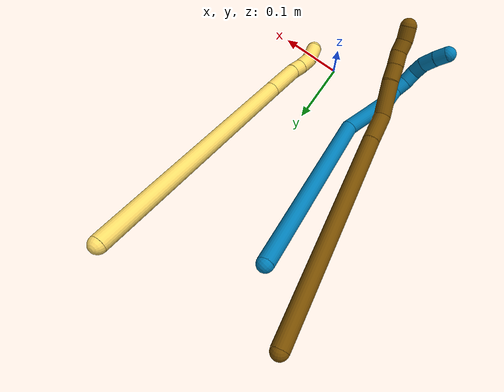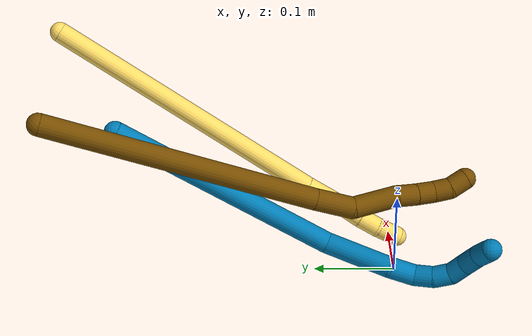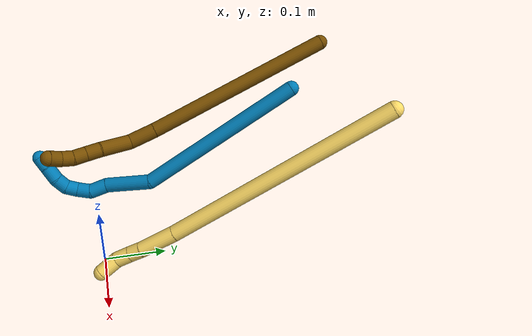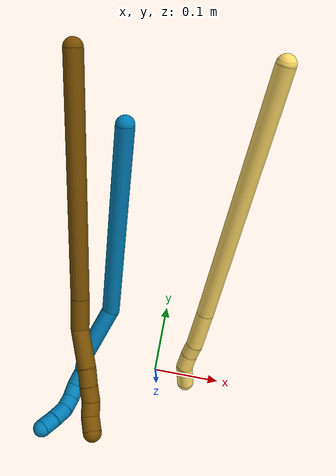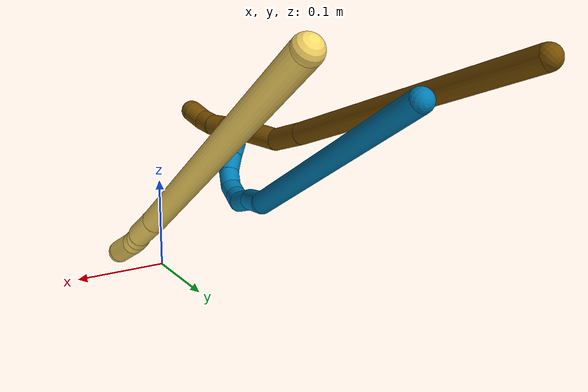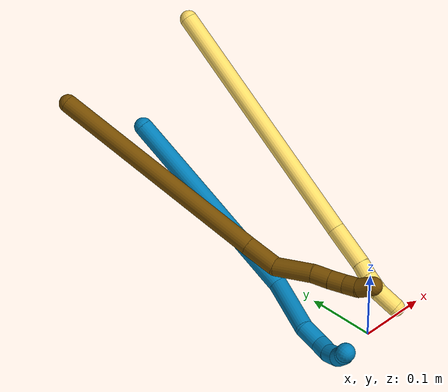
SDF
<sdf version="1.7">
 <world name="default">
  <model name="5">
   <static>0</static>
   <link name="5">
    <collision name="collision-cylinder-e_1_1_4">
     <pose>-0.007206 -0.030723 -0.17885 2.97147 -0.039691 -0.457418</pose>
     <geometry><cylinder><radius>0.0125</radius><length>0.363224</length></cylinder></geometry>
     <surface>
      <friction><ode><mu>1.16</mu><mu2>1.16</mu2><slip1>0</slip1><slip2>0</slip2></ode></friction>
      <contact><ode><kp>1e+06</kp><kd>1</kd><max_vel>0</max_vel><min_depth>0.001</min_depth></ode></contact>
     </surface>
    </collision>
    <visual name="visual-cylinder-e_1_1_4">
     <pose>-0.007206 -0.030723 -0.17885 2.97147 -0.039691 -0.457418</pose>
     <geometry><cylinder><radius>0.0125</radius><length>0.363224</length></cylinder></geometry>
     <material><ambient>1 0.858824 0.4 1</ambient></material>
    </visual>
    <collision name="collision-cylinder-e_2_4_5">
     <pose>-0.016144 -0.067878 -0.386667 2.92307 -0.058262 -0.519263</pose>
     <geometry><cylinder><radius>0.0125</radius><length>0.059447</length></cylinder></geometry>
     <surface>
      <friction><ode><mu>1.16</mu><mu2>1.16</mu2><slip1>0</slip1><slip2>0</slip2></ode></friction>
      <contact><ode><kp>1e+06</kp><kd>1</kd><max_vel>0</max_vel><min_depth>0.001</min_depth></ode></contact>
     </surface>
    </collision>
    <visual name="visual-cylinder-e_2_4_5">
     <pose>-0.016144 -0.067878 -0.386667 2.92307 -0.058262 -0.519263</pose>
     <geometry><cylinder><radius>0.0125</radius><length>0.059447</length></cylinder></geometry>
     <material><ambient>1 0.858824 0.4 1</ambient></material>
    </visual>
    <collision name="collision-cylinder-e_3_5_6">
     <pose>-0.019776 -0.076397 -0.425507 2.9334 -0.186236 -1.45887</pose>
     <geometry><cylinder><radius>0.0125</radius><length>0.020537</length></cylinder></geometry>
     <surface>
      <friction><ode><mu>1.16</mu><mu2>1.16</mu2><slip1>0</slip1><slip2>0</slip2></ode></friction>
      <contact><ode><kp>1e+06</kp><kd>1</kd><max_vel>0</max_vel><min_depth>0.001</min_depth></ode></contact>
     </surface>
    </collision>
    <visual name="visual-cylinder-e_3_5_6">
     <pose>-0.019776 -0.076397 -0.425507 2.9334 -0.186236 -1.45887</pose>
     <geometry><cylinder><radius>0.0125</radius><length>0.020537</length></cylinder></geometry>
     <material><ambient>1 0.858824 0.4 1</ambient></material>
    </visual>
    <collision name="collision-cylinder-e_4_6_7">
     <pose>-0.022963 -0.08163 -0.447408 2.88565 -0.103067 -0.762495</pose>
     <geometry><cylinder><radius>0.0125</radius><length>0.024998</length></cylinder></geometry>
     <surface>
      <friction><ode><mu>1.16</mu><mu2>1.16</mu2><slip1>0</slip1><slip2>0</slip2></ode></friction>
      <contact><ode><kp>1e+06</kp><kd>1</kd><max_vel>0</max_vel><min_depth>0.001</min_depth></ode></contact>
     </surface>
    </collision>
    <visual name="visual-cylinder-e_4_6_7">
     <pose>-0.022963 -0.08163 -0.447408 2.88565 -0.103067 -0.762495</pose>
     <geometry><cylinder><radius>0.0125</radius><length>0.024998</length></cylinder></geometry>
     <material><ambient>1 0.858824 0.4 1</ambient></material>
    </visual>
    <collision name="collision-cylinder-e_5_7_2">
     <pose>-0.020604 -0.087258 -0.474709 2.98056 0.231338 1.92757</pose>
     <geometry><cylinder><radius>0.0125</radius><length>0.031794</length></cylinder></geometry>
     <surface>
      <friction><ode><mu>1.16</mu><mu2>1.16</mu2><slip1>0</slip1><slip2>0</slip2></ode></friction>
      <contact><ode><kp>1e+06</kp><kd>1</kd><max_vel>0</max_vel><min_depth>0.001</min_depth></ode></contact>
     </surface>
    </collision>
    <visual name="visual-cylinder-e_5_7_2">
     <pose>-0.020604 -0.087258 -0.474709 2.98056 0.231338 1.92757</pose>
     <geometry><cylinder><radius>0.0125</radius><length>0.031794</length></cylinder></geometry>
     <material><ambient>1 0.858824 0.4 1</ambient></material>
    </visual>
    <collision name="collision-sphere-2">
     <pose>-0.016959 -0.089739 -0.489982 0 -0 0</pose>
     <geometry><sphere><radius>0.0125</radius></sphere></geometry>
     <surface>
      <friction><ode><mu>1.16</mu><mu2>1.16</mu2><slip1>0</slip1><slip2>0</slip2></ode></friction>
      <contact><ode><kp>1e+06</kp><kd>1</kd><max_vel>0</max_vel><min_depth>0.001</min_depth></ode></contact>
     </surface>
    </collision>
    <visual name="visual-sphere-2">
     <pose>-0.016959 -0.089739 -0.489982 0 -0 0</pose>
     <geometry><sphere><radius>0.0125</radius></sphere></geometry>
     <material><ambient>1 0.858824 0.4 1</ambient></material>
    </visual>
    <collision name="collision-sphere-7">
     <pose>-0.024249 -0.084777 -0.459435 0 -0 0</pose>
     <geometry><sphere><radius>0.0125</radius></sphere></geometry>
     <surface>
      <friction><ode><mu>1.16</mu><mu2>1.16</mu2><slip1>0</slip1><slip2>0</slip2></ode></friction>
      <contact><ode><kp>1e+06</kp><kd>1</kd><max_vel>0</max_vel><min_depth>0.001</min_depth></ode></contact>
     </surface>
    </collision>
    <visual name="visual-sphere-7">
     <pose>-0.024249 -0.084777 -0.459435 0 -0 0</pose>
     <geometry><sphere><radius>0.0125</radius></sphere></geometry>
     <material><ambient>1 0.858824 0.4 1</ambient></material>
    </visual>
    <collision name="collision-sphere-6">
     <pose>-0.021677 -0.078482 -0.43538 0 -0 0</pose>
     <geometry><sphere><radius>0.0125</radius></sphere></geometry>
     <surface>
      <friction><ode><mu>1.16</mu><mu2>1.16</mu2><slip1>0</slip1><slip2>0</slip2></ode></friction>
      <contact><ode><kp>1e+06</kp><kd>1</kd><max_vel>0</max_vel><min_depth>0.001</min_depth></ode></contact>
     </surface>
    </collision>
    <visual name="visual-sphere-6">
     <pose>-0.021677 -0.078482 -0.43538 0 -0 0</pose>
     <geometry><sphere><radius>0.0125</radius></sphere></geometry>
     <material><ambient>1 0.858824 0.4 1</ambient></material>
    </visual>
    <collision name="collision-sphere-5">
     <pose>-0.017875 -0.074311 -0.415634 0 -0 0</pose>
     <geometry><sphere><radius>0.0125</radius></sphere></geometry>
     <surface>
      <friction><ode><mu>1.16</mu><mu2>1.16</mu2><slip1>0</slip1><slip2>0</slip2></ode></friction>
      <contact><ode><kp>1e+06</kp><kd>1</kd><max_vel>0</max_vel><min_depth>0.001</min_depth></ode></contact>
     </surface>
    </collision>
    <visual name="visual-sphere-5">
     <pose>-0.017875 -0.074311 -0.415634 0 -0 0</pose>
     <geometry><sphere><radius>0.0125</radius></sphere></geometry>
     <material><ambient>1 0.858824 0.4 1</ambient></material>
    </visual>
    <collision name="collision-sphere-1">
     <geometry><sphere><radius>0.0125</radius></sphere></geometry>
     <surface>
      <friction><ode><mu>1.16</mu><mu2>1.16</mu2><slip1>0</slip1><slip2>0</slip2></ode></friction>
      <contact><ode><kp>1e+06</kp><kd>1</kd><max_vel>0</max_vel><min_depth>0.001</min_depth></ode></contact>
     </surface>
    </collision>
    <visual name="visual-sphere-1">
     <geometry><sphere><radius>0.0125</radius></sphere></geometry>
     <material><ambient>1 0.858824 0.4 1</ambient></material>
    </visual>
    <collision name="collision-sphere-4">
     <pose>-0.014413 -0.061445 -0.357699 0 -0 0</pose>
     <geometry><sphere><radius>0.0125</radius></sphere></geometry>
     <surface>
      <friction><ode><mu>1.16</mu><mu2>1.16</mu2><slip1>0</slip1><slip2>0</slip2></ode></friction>
      <contact><ode><kp>1e+06</kp><kd>1</kd><max_vel>0</max_vel><min_depth>0.001</min_depth></ode></contact>
     </surface>
    </collision>
    <visual name="visual-sphere-4">
     <pose>-0.014413 -0.061445 -0.357699 0 -0 0</pose>
     <geometry><sphere><radius>0.0125</radius></sphere></geometry>
     <material><ambient>1 0.858824 0.4 1</ambient></material>
    </visual>
    <inertial>
     <pose>-0.010425 -0.043156 -0.245929 0 -0 0</pose>
     <mass>0.5</mass>
     <inertia>
      <ixx>0.001831</ixx>
      <ixy>0</ixy>
      <ixz>0</ixz>
      <iyy>-0.005333</iyy>
      <iyz>0</iyz>
      <izz>0.000805</izz>
     </inertia>
    </inertial>
   </link>
   <pose>0.06756 0.414046 0.289079 -0.825222 -0.050629 -0.037809</pose>
  </model>
  <model name="9">
   <static>0</static>
   <link name="9">
    <collision name="collision-cylinder-e_1_1_4">
     <pose>-0.057458 -0.058746 -0.113433 2.66374 -0.422682 -1.44421</pose>
     <geometry><cylinder><radius>0.0125</radius><length>0.28014</length></cylinder></geometry>
     <surface>
      <friction><ode><mu>1.16</mu><mu2>1.16</mu2><slip1>0</slip1><slip2>0</slip2></ode></friction>
      <contact><ode><kp>1e+06</kp><kd>1</kd><max_vel>0</max_vel><min_depth>0.001</min_depth></ode></contact>
     </surface>
    </collision>
    <visual name="visual-cylinder-e_1_1_4">
     <pose>-0.057458 -0.058746 -0.113433 2.66374 -0.422682 -1.44421</pose>
     <geometry><cylinder><radius>0.0125</radius><length>0.28014</length></cylinder></geometry>
     <material><ambient>0 0.490196 0.709804 1</ambient></material>
    </visual>
    <collision name="collision-cylinder-e_2_4_5">
     <pose>-0.112959 -0.130092 -0.264253 2.81653 0.049549 0.299961</pose>
     <geometry><cylinder><radius>0.0125</radius><length>0.079002</length></cylinder></geometry>
     <surface>
      <friction><ode><mu>1.16</mu><mu2>1.16</mu2><slip1>0</slip1><slip2>0</slip2></ode></friction>
      <contact><ode><kp>1e+06</kp><kd>1</kd><max_vel>0</max_vel><min_depth>0.001</min_depth></ode></contact>
     </surface>
    </collision>
    <visual name="visual-cylinder-e_2_4_5">
     <pose>-0.112959 -0.130092 -0.264253 2.81653 0.049549 0.299961</pose>
     <geometry><cylinder><radius>0.0125</radius><length>0.079002</length></cylinder></geometry>
     <material><ambient>0 0.490196 0.709804 1</ambient></material>
    </visual>
    <collision name="collision-cylinder-e_3_5_6">
     <pose>-0.115224 -0.146728 -0.315587 2.85987 -0.282939 -1.57516</pose>
     <geometry><cylinder><radius>0.0125</radius><length>0.030242</length></cylinder></geometry>
     <surface>
      <friction><ode><mu>1.16</mu><mu2>1.16</mu2><slip1>0</slip1><slip2>0</slip2></ode></friction>
      <contact><ode><kp>1e+06</kp><kd>1</kd><max_vel>0</max_vel><min_depth>0.001</min_depth></ode></contact>
     </surface>
    </collision>
    <visual name="visual-cylinder-e_3_5_6">
     <pose>-0.115224 -0.146728 -0.315587 2.85987 -0.282939 -1.57516</pose>
     <geometry><cylinder><radius>0.0125</radius><length>0.030242</length></cylinder></geometry>
     <material><ambient>0 0.490196 0.709804 1</ambient></material>
    </visual>
    <collision name="collision-cylinder-e_4_6_7">
     <pose>-0.117712 -0.151234 -0.340899 3.10035 0.151287 2.61024</pose>
     <geometry><cylinder><radius>0.0125</radius><length>0.02301</length></cylinder></geometry>
     <surface>
      <friction><ode><mu>1.16</mu><mu2>1.16</mu2><slip1>0</slip1><slip2>0</slip2></ode></friction>
      <contact><ode><kp>1e+06</kp><kd>1</kd><max_vel>0</max_vel><min_depth>0.001</min_depth></ode></contact>
     </surface>
    </collision>
    <visual name="visual-cylinder-e_4_6_7">
     <pose>-0.117712 -0.151234 -0.340899 3.10035 0.151287 2.61024</pose>
     <geometry><cylinder><radius>0.0125</radius><length>0.02301</length></cylinder></geometry>
     <material><ambient>0 0.490196 0.709804 1</ambient></material>
    </visual>
    <collision name="collision-cylinder-e_5_7_8">
     <pose>-0.114637 -0.149176 -0.362249 -2.89379 0.129483 -0.959932</pose>
     <geometry><cylinder><radius>0.0125</radius><length>0.020777</length></cylinder></geometry>
     <surface>
      <friction><ode><mu>1.16</mu><mu2>1.16</mu2><slip1>0</slip1><slip2>0</slip2></ode></friction>
      <contact><ode><kp>1e+06</kp><kd>1</kd><max_vel>0</max_vel><min_depth>0.001</min_depth></ode></contact>
     </surface>
    </collision>
    <visual name="visual-cylinder-e_5_7_8">
     <pose>-0.114637 -0.149176 -0.362249 -2.89379 0.129483 -0.959932</pose>
     <geometry><cylinder><radius>0.0125</radius><length>0.020777</length></cylinder></geometry>
     <material><ambient>0 0.490196 0.709804 1</ambient></material>
    </visual>
    <collision name="collision-cylinder-e_6_8_9">
     <pose>-0.108861 -0.140645 -0.379943 -2.47979 0.426048 -1.12387</pose>
     <geometry><cylinder><radius>0.0125</radius><length>0.021457</length></cylinder></geometry>
     <surface>
      <friction><ode><mu>1.16</mu><mu2>1.16</mu2><slip1>0</slip1><slip2>0</slip2></ode></friction>
      <contact><ode><kp>1e+06</kp><kd>1</kd><max_vel>0</max_vel><min_depth>0.001</min_depth></ode></contact>
     </surface>
    </collision>
    <visual name="visual-cylinder-e_6_8_9">
     <pose>-0.108861 -0.140645 -0.379943 -2.47979 0.426048 -1.12387</pose>
     <geometry><cylinder><radius>0.0125</radius><length>0.021457</length></cylinder></geometry>
     <material><ambient>0 0.490196 0.709804 1</ambient></material>
    </visual>
    <collision name="collision-cylinder-e_7_9_10">
     <pose>-0.096412 -0.128993 -0.394806 -2.47331 0.721221 -1.65344</pose>
     <geometry><cylinder><radius>0.0125</radius><length>0.024279</length></cylinder></geometry>
     <surface>
      <friction><ode><mu>1.16</mu><mu2>1.16</mu2><slip1>0</slip1><slip2>0</slip2></ode></friction>
      <contact><ode><kp>1e+06</kp><kd>1</kd><max_vel>0</max_vel><min_depth>0.001</min_depth></ode></contact>
     </surface>
    </collision>
    <visual name="visual-cylinder-e_7_9_10">
     <pose>-0.096412 -0.128993 -0.394806 -2.47331 0.721221 -1.65344</pose>
     <geometry><cylinder><radius>0.0125</radius><length>0.024279</length></cylinder></geometry>
     <material><ambient>0 0.490196 0.709804 1</ambient></material>
    </visual>
    <collision name="collision-cylinder-e_8_10_2">
     <pose>-0.080999 -0.119491 -0.408416 -2.60351 0.777353 -1.95642</pose>
     <geometry><cylinder><radius>0.0125</radius><length>0.021093</length></cylinder></geometry>
     <surface>
      <friction><ode><mu>1.16</mu><mu2>1.16</mu2><slip1>0</slip1><slip2>0</slip2></ode></friction>
      <contact><ode><kp>1e+06</kp><kd>1</kd><max_vel>0</max_vel><min_depth>0.001</min_depth></ode></contact>
     </surface>
    </collision>
    <visual name="visual-cylinder-e_8_10_2">
     <pose>-0.080999 -0.119491 -0.408416 -2.60351 0.777353 -1.95642</pose>
     <geometry><cylinder><radius>0.0125</radius><length>0.021093</length></cylinder></geometry>
     <material><ambient>0 0.490196 0.709804 1</ambient></material>
    </visual>
    <collision name="collision-sphere-2">
     <pose>-0.073602 -0.115639 -0.414871 0 -0 0</pose>
     <geometry><sphere><radius>0.0125</radius></sphere></geometry>
     <surface>
      <friction><ode><mu>1.16</mu><mu2>1.16</mu2><slip1>0</slip1><slip2>0</slip2></ode></friction>
      <contact><ode><kp>1e+06</kp><kd>1</kd><max_vel>0</max_vel><min_depth>0.001</min_depth></ode></contact>
     </surface>
    </collision>
    <visual name="visual-sphere-2">
     <pose>-0.073602 -0.115639 -0.414871 0 -0 0</pose>
     <geometry><sphere><radius>0.0125</radius></sphere></geometry>
     <material><ambient>0 0.490196 0.709804 1</ambient></material>
    </visual>
    <collision name="collision-sphere-10">
     <pose>-0.088396 -0.123344 -0.401962 0 -0 0</pose>
     <geometry><sphere><radius>0.0125</radius></sphere></geometry>
     <surface>
      <friction><ode><mu>1.16</mu><mu2>1.16</mu2><slip1>0</slip1><slip2>0</slip2></ode></friction>
      <contact><ode><kp>1e+06</kp><kd>1</kd><max_vel>0</max_vel><min_depth>0.001</min_depth></ode></contact>
     </surface>
    </collision>
    <visual name="visual-sphere-10">
     <pose>-0.088396 -0.123344 -0.401962 0 -0 0</pose>
     <geometry><sphere><radius>0.0125</radius></sphere></geometry>
     <material><ambient>0 0.490196 0.709804 1</ambient></material>
    </visual>
    <collision name="collision-sphere-9">
     <pose>-0.104428 -0.134642 -0.38765 0 -0 0</pose>
     <geometry><sphere><radius>0.0125</radius></sphere></geometry>
     <surface>
      <friction><ode><mu>1.16</mu><mu2>1.16</mu2><slip1>0</slip1><slip2>0</slip2></ode></friction>
      <contact><ode><kp>1e+06</kp><kd>1</kd><max_vel>0</max_vel><min_depth>0.001</min_depth></ode></contact>
     </surface>
    </collision>
    <visual name="visual-sphere-9">
     <pose>-0.104428 -0.134642 -0.38765 0 -0 0</pose>
     <geometry><sphere><radius>0.0125</radius></sphere></geometry>
     <material><ambient>0 0.490196 0.709804 1</ambient></material>
    </visual>
    <collision name="collision-sphere-4">
     <pose>-0.114916 -0.117492 -0.226866 0 -0 0</pose>
     <geometry><sphere><radius>0.0125</radius></sphere></geometry>
     <surface>
      <friction><ode><mu>1.16</mu><mu2>1.16</mu2><slip1>0</slip1><slip2>0</slip2></ode></friction>
      <contact><ode><kp>1e+06</kp><kd>1</kd><max_vel>0</max_vel><min_depth>0.001</min_depth></ode></contact>
     </surface>
    </collision>
    <visual name="visual-sphere-4">
     <pose>-0.114916 -0.117492 -0.226866 0 -0 0</pose>
     <geometry><sphere><radius>0.0125</radius></sphere></geometry>
     <material><ambient>0 0.490196 0.709804 1</ambient></material>
    </visual>
    <collision name="collision-sphere-1">
     <geometry><sphere><radius>0.0125</radius></sphere></geometry>
     <surface>
      <friction><ode><mu>1.16</mu><mu2>1.16</mu2><slip1>0</slip1><slip2>0</slip2></ode></friction>
      <contact><ode><kp>1e+06</kp><kd>1</kd><max_vel>0</max_vel><min_depth>0.001</min_depth></ode></contact>
     </surface>
    </collision>
    <visual name="visual-sphere-1">
     <geometry><sphere><radius>0.0125</radius></sphere></geometry>
     <material><ambient>0 0.490196 0.709804 1</ambient></material>
    </visual>
    <collision name="collision-sphere-8">
     <pose>-0.113295 -0.146649 -0.372237 0 -0 0</pose>
     <geometry><sphere><radius>0.0125</radius></sphere></geometry>
     <surface>
      <friction><ode><mu>1.16</mu><mu2>1.16</mu2><slip1>0</slip1><slip2>0</slip2></ode></friction>
      <contact><ode><kp>1e+06</kp><kd>1</kd><max_vel>0</max_vel><min_depth>0.001</min_depth></ode></contact>
     </surface>
    </collision>
    <visual name="visual-sphere-8">
     <pose>-0.113295 -0.146649 -0.372237 0 -0 0</pose>
     <geometry><sphere><radius>0.0125</radius></sphere></geometry>
     <material><ambient>0 0.490196 0.709804 1</ambient></material>
    </visual>
    <collision name="collision-sphere-5">
     <pose>-0.111003 -0.142691 -0.30164 0 -0 0</pose>
     <geometry><sphere><radius>0.0125</radius></sphere></geometry>
     <surface>
      <friction><ode><mu>1.16</mu><mu2>1.16</mu2><slip1>0</slip1><slip2>0</slip2></ode></friction>
      <contact><ode><kp>1e+06</kp><kd>1</kd><max_vel>0</max_vel><min_depth>0.001</min_depth></ode></contact>
     </surface>
    </collision>
    <visual name="visual-sphere-5">
     <pose>-0.111003 -0.142691 -0.30164 0 -0 0</pose>
     <geometry><sphere><radius>0.0125</radius></sphere></geometry>
     <material><ambient>0 0.490196 0.709804 1</ambient></material>
    </visual>
    <collision name="collision-sphere-6">
     <pose>-0.119446 -0.150765 -0.329535 0 -0 0</pose>
     <geometry><sphere><radius>0.0125</radius></sphere></geometry>
     <surface>
      <friction><ode><mu>1.16</mu><mu2>1.16</mu2><slip1>0</slip1><slip2>0</slip2></ode></friction>
      <contact><ode><kp>1e+06</kp><kd>1</kd><max_vel>0</max_vel><min_depth>0.001</min_depth></ode></contact>
     </surface>
    </collision>
    <visual name="visual-sphere-6">
     <pose>-0.119446 -0.150765 -0.329535 0 -0 0</pose>
     <geometry><sphere><radius>0.0125</radius></sphere></geometry>
     <material><ambient>0 0.490196 0.709804 1</ambient></material>
    </visual>
    <collision name="collision-sphere-7">
     <pose>-0.115978 -0.151703 -0.352262 0 -0 0</pose>
     <geometry><sphere><radius>0.0125</radius></sphere></geometry>
     <surface>
      <friction><ode><mu>1.16</mu><mu2>1.16</mu2><slip1>0</slip1><slip2>0</slip2></ode></friction>
      <contact><ode><kp>1e+06</kp><kd>1</kd><max_vel>0</max_vel><min_depth>0.001</min_depth></ode></contact>
     </surface>
    </collision>
    <visual name="visual-sphere-7">
     <pose>-0.115978 -0.151703 -0.352262 0 -0 0</pose>
     <geometry><sphere><radius>0.0125</radius></sphere></geometry>
     <material><ambient>0 0.490196 0.709804 1</ambient></material>
    </visual>
    <inertial>
     <pose>-0.079961 -0.092843 -0.207842 0 -0 0</pose>
     <mass>0.5</mass>
     <inertia>
      <ixx>-0.001414</ixx>
      <ixy>0</ixy>
      <ixz>0</ixz>
      <iyy>-0.00157</iyy>
      <iyz>0</iyz>
      <izz>0.001504</izz>
     </inertia>
    </inertial>
   </link>
   <pose>-0.101407 0.326953 0.230066 1.61611 -0.449986 2.97539</pose>
  </model>
  <model name="12">
   <static>0</static>
   <link name="12">
    <collision name="collision-cylinder-e_1_1_4">
     <pose>-0.092842 -0.100137 -0.077918 2.23205 -0.631706 -1.17834</pose>
     <geometry><cylinder><radius>0.0125</radius><length>0.314441</length></cylinder></geometry>
     <surface>
      <friction><ode><mu>1.16</mu><mu2>1.16</mu2><slip1>0</slip1><slip2>0</slip2></ode></friction>
      <contact><ode><kp>1e+06</kp><kd>1</kd><max_vel>0</max_vel><min_depth>0.001</min_depth></ode></contact>
     </surface>
    </collision>
    <visual name="visual-cylinder-e_1_1_4">
     <pose>-0.092842 -0.100137 -0.077918 2.23205 -0.631706 -1.17834</pose>
     <geometry><cylinder><radius>0.0125</radius><length>0.314441</length></cylinder></geometry>
     <material><ambient>0.466667 0.301961 0 1</ambient></material>
    </visual>
    <collision name="collision-cylinder-e_2_4_5">
     <pose>-0.198266 -0.214879 -0.167863 2.25969 -0.586841 -1.13892</pose>
     <geometry><cylinder><radius>0.0125</radius><length>0.045444</length></cylinder></geometry>
     <surface>
      <friction><ode><mu>1.16</mu><mu2>1.16</mu2><slip1>0</slip1><slip2>0</slip2></ode></friction>
      <contact><ode><kp>1e+06</kp><kd>1</kd><max_vel>0</max_vel><min_depth>0.001</min_depth></ode></contact>
     </surface>
    </collision>
    <visual name="visual-cylinder-e_2_4_5">
     <pose>-0.198266 -0.214879 -0.167863 2.25969 -0.586841 -1.13892</pose>
     <geometry><cylinder><radius>0.0125</radius><length>0.045444</length></cylinder></geometry>
     <material><ambient>0.466667 0.301961 0 1</ambient></material>
    </visual>
    <collision name="collision-cylinder-e_3_5_6">
     <pose>-0.222262 -0.238306 -0.202302 2.76663 -0.442543 -1.74037</pose>
     <geometry><cylinder><radius>0.0125</radius><length>0.053305</length></cylinder></geometry>
     <surface>
      <friction><ode><mu>1.16</mu><mu2>1.16</mu2><slip1>0</slip1><slip2>0</slip2></ode></friction>
      <contact><ode><kp>1e+06</kp><kd>1</kd><max_vel>0</max_vel><min_depth>0.001</min_depth></ode></contact>
     </surface>
    </collision>
    <visual name="visual-cylinder-e_3_5_6">
     <pose>-0.222262 -0.238306 -0.202302 2.76663 -0.442543 -1.74037</pose>
     <geometry><cylinder><radius>0.0125</radius><length>0.053305</length></cylinder></geometry>
     <material><ambient>0.466667 0.301961 0 1</ambient></material>
    </visual>
    <collision name="collision-cylinder-e_4_6_7">
     <pose>-0.239376 -0.252715 -0.233969 2.5984 -0.485179 -1.45299</pose>
     <geometry><cylinder><radius>0.0125</radius><length>0.024445</length></cylinder></geometry>
     <surface>
      <friction><ode><mu>1.16</mu><mu2>1.16</mu2><slip1>0</slip1><slip2>0</slip2></ode></friction>
      <contact><ode><kp>1e+06</kp><kd>1</kd><max_vel>0</max_vel><min_depth>0.001</min_depth></ode></contact>
     </surface>
    </collision>
    <visual name="visual-cylinder-e_4_6_7">
     <pose>-0.239376 -0.252715 -0.233969 2.5984 -0.485179 -1.45299</pose>
     <geometry><cylinder><radius>0.0125</radius><length>0.024445</length></cylinder></geometry>
     <material><ambient>0.466667 0.301961 0 1</ambient></material>
    </visual>
    <collision name="collision-cylinder-e_5_7_8">
     <pose>-0.250148 -0.262608 -0.251494 2.66167 -0.498275 -1.60985</pose>
     <geometry><cylinder><radius>0.0125</radius><length>0.021227</length></cylinder></geometry>
     <surface>
      <friction><ode><mu>1.16</mu><mu2>1.16</mu2><slip1>0</slip1><slip2>0</slip2></ode></friction>
      <contact><ode><kp>1e+06</kp><kd>1</kd><max_vel>0</max_vel><min_depth>0.001</min_depth></ode></contact>
     </surface>
    </collision>
    <visual name="visual-cylinder-e_5_7_8">
     <pose>-0.250148 -0.262608 -0.251494 2.66167 -0.498275 -1.60985</pose>
     <geometry><cylinder><radius>0.0125</radius><length>0.021227</length></cylinder></geometry>
     <material><ambient>0.466667 0.301961 0 1</ambient></material>
    </visual>
    <collision name="collision-cylinder-e_6_8_9">
     <pose>-0.257782 -0.271648 -0.26832 2.63607 -0.256163 -0.925094</pose>
     <geometry><cylinder><radius>0.0125</radius><length>0.020218</length></cylinder></geometry>
     <surface>
      <friction><ode><mu>1.16</mu><mu2>1.16</mu2><slip1>0</slip1><slip2>0</slip2></ode></friction>
      <contact><ode><kp>1e+06</kp><kd>1</kd><max_vel>0</max_vel><min_depth>0.001</min_depth></ode></contact>
     </surface>
    </collision>
    <visual name="visual-cylinder-e_6_8_9">
     <pose>-0.257782 -0.271648 -0.26832 2.63607 -0.256163 -0.925094</pose>
     <geometry><cylinder><radius>0.0125</radius><length>0.020218</length></cylinder></geometry>
     <material><ambient>0.466667 0.301961 0 1</ambient></material>
    </visual>
    <collision name="collision-cylinder-e_7_9_2">
     <pose>-0.261992 -0.278064 -0.287068 2.9782 -0.158351 -1.53934</pose>
     <geometry><cylinder><radius>0.0125</radius><length>0.02092</length></cylinder></geometry>
     <surface>
      <friction><ode><mu>1.16</mu><mu2>1.16</mu2><slip1>0</slip1><slip2>0</slip2></ode></friction>
      <contact><ode><kp>1e+06</kp><kd>1</kd><max_vel>0</max_vel><min_depth>0.001</min_depth></ode></contact>
     </surface>
    </collision>
    <visual name="visual-cylinder-e_7_9_2">
     <pose>-0.261992 -0.278064 -0.287068 2.9782 -0.158351 -1.53934</pose>
     <geometry><cylinder><radius>0.0125</radius><length>0.02092</length></cylinder></geometry>
     <material><ambient>0.466667 0.301961 0 1</ambient></material>
    </visual>
    <collision name="collision-sphere-2">
     <pose>-0.263642 -0.279744 -0.29726 0 -0 0</pose>
     <geometry><sphere><radius>0.0125</radius></sphere></geometry>
     <surface>
      <friction><ode><mu>1.16</mu><mu2>1.16</mu2><slip1>0</slip1><slip2>0</slip2></ode></friction>
      <contact><ode><kp>1e+06</kp><kd>1</kd><max_vel>0</max_vel><min_depth>0.001</min_depth></ode></contact>
     </surface>
    </collision>
    <visual name="visual-sphere-2">
     <pose>-0.263642 -0.279744 -0.29726 0 -0 0</pose>
     <geometry><sphere><radius>0.0125</radius></sphere></geometry>
     <material><ambient>0.466667 0.301961 0 1</ambient></material>
    </visual>
    <collision name="collision-sphere-9">
     <pose>-0.260343 -0.276384 -0.276876 0 -0 0</pose>
     <geometry><sphere><radius>0.0125</radius></sphere></geometry>
     <surface>
      <friction><ode><mu>1.16</mu><mu2>1.16</mu2><slip1>0</slip1><slip2>0</slip2></ode></friction>
      <contact><ode><kp>1e+06</kp><kd>1</kd><max_vel>0</max_vel><min_depth>0.001</min_depth></ode></contact>
     </surface>
    </collision>
    <visual name="visual-sphere-9">
     <pose>-0.260343 -0.276384 -0.276876 0 -0 0</pose>
     <geometry><sphere><radius>0.0125</radius></sphere></geometry>
     <material><ambient>0.466667 0.301961 0 1</ambient></material>
    </visual>
    <collision name="collision-sphere-4">
     <pose>-0.185684 -0.200274 -0.155835 0 -0 0</pose>
     <geometry><sphere><radius>0.0125</radius></sphere></geometry>
     <surface>
      <friction><ode><mu>1.16</mu><mu2>1.16</mu2><slip1>0</slip1><slip2>0</slip2></ode></friction>
      <contact><ode><kp>1e+06</kp><kd>1</kd><max_vel>0</max_vel><min_depth>0.001</min_depth></ode></contact>
     </surface>
    </collision>
    <visual name="visual-sphere-4">
     <pose>-0.185684 -0.200274 -0.155835 0 -0 0</pose>
     <geometry><sphere><radius>0.0125</radius></sphere></geometry>
     <material><ambient>0.466667 0.301961 0 1</ambient></material>
    </visual>
    <collision name="collision-sphere-1">
     <geometry><sphere><radius>0.0125</radius></sphere></geometry>
     <surface>
      <friction><ode><mu>1.16</mu><mu2>1.16</mu2><slip1>0</slip1><slip2>0</slip2></ode></friction>
      <contact><ode><kp>1e+06</kp><kd>1</kd><max_vel>0</max_vel><min_depth>0.001</min_depth></ode></contact>
     </surface>
    </collision>
    <visual name="visual-sphere-1">
     <geometry><sphere><radius>0.0125</radius></sphere></geometry>
     <material><ambient>0.466667 0.301961 0 1</ambient></material>
    </visual>
    <collision name="collision-sphere-8">
     <pose>-0.25522 -0.266913 -0.259764 0 -0 0</pose>
     <geometry><sphere><radius>0.0125</radius></sphere></geometry>
     <surface>
      <friction><ode><mu>1.16</mu><mu2>1.16</mu2><slip1>0</slip1><slip2>0</slip2></ode></friction>
      <contact><ode><kp>1e+06</kp><kd>1</kd><max_vel>0</max_vel><min_depth>0.001</min_depth></ode></contact>
     </surface>
    </collision>
    <visual name="visual-sphere-8">
     <pose>-0.25522 -0.266913 -0.259764 0 -0 0</pose>
     <geometry><sphere><radius>0.0125</radius></sphere></geometry>
     <material><ambient>0.466667 0.301961 0 1</ambient></material>
    </visual>
    <collision name="collision-sphere-5">
     <pose>-0.210848 -0.229485 -0.17989 0 -0 0</pose>
     <geometry><sphere><radius>0.0125</radius></sphere></geometry>
     <surface>
      <friction><ode><mu>1.16</mu><mu2>1.16</mu2><slip1>0</slip1><slip2>0</slip2></ode></friction>
      <contact><ode><kp>1e+06</kp><kd>1</kd><max_vel>0</max_vel><min_depth>0.001</min_depth></ode></contact>
     </surface>
    </collision>
    <visual name="visual-sphere-5">
     <pose>-0.210848 -0.229485 -0.17989 0 -0 0</pose>
     <geometry><sphere><radius>0.0125</radius></sphere></geometry>
     <material><ambient>0.466667 0.301961 0 1</ambient></material>
    </visual>
    <collision name="collision-sphere-6">
     <pose>-0.233675 -0.247127 -0.224713 0 -0 0</pose>
     <geometry><sphere><radius>0.0125</radius></sphere></geometry>
     <surface>
      <friction><ode><mu>1.16</mu><mu2>1.16</mu2><slip1>0</slip1><slip2>0</slip2></ode></friction>
      <contact><ode><kp>1e+06</kp><kd>1</kd><max_vel>0</max_vel><min_depth>0.001</min_depth></ode></contact>
     </surface>
    </collision>
    <visual name="visual-sphere-6">
     <pose>-0.233675 -0.247127 -0.224713 0 -0 0</pose>
     <geometry><sphere><radius>0.0125</radius></sphere></geometry>
     <material><ambient>0.466667 0.301961 0 1</ambient></material>
    </visual>
    <collision name="collision-sphere-7">
     <pose>-0.245076 -0.258304 -0.243224 0 -0 0</pose>
     <geometry><sphere><radius>0.0125</radius></sphere></geometry>
     <surface>
      <friction><ode><mu>1.16</mu><mu2>1.16</mu2><slip1>0</slip1><slip2>0</slip2></ode></friction>
      <contact><ode><kp>1e+06</kp><kd>1</kd><max_vel>0</max_vel><min_depth>0.001</min_depth></ode></contact>
     </surface>
    </collision>
    <visual name="visual-sphere-7">
     <pose>-0.245076 -0.258304 -0.243224 0 -0 0</pose>
     <geometry><sphere><radius>0.0125</radius></sphere></geometry>
     <material><ambient>0.466667 0.301961 0 1</ambient></material>
    </visual>
    <inertial>
     <pose>-0.143811 -0.154033 -0.130802 0 -0 0</pose>
     <mass>0.5</mass>
     <inertia>
      <ixx>-0.001182</ixx>
      <ixy>0</ixy>
      <ixz>0</ixz>
      <iyy>-0.001474</iyy>
      <iyz>0</iyz>
      <izz>0.0032</izz>
     </inertia>
    </inertial>
   </link>
   <pose>-0.173645 0.395283 0.269049 2.57193 -0.745217 2.77039</pose>
  </model>
 </world>
</sdf>
